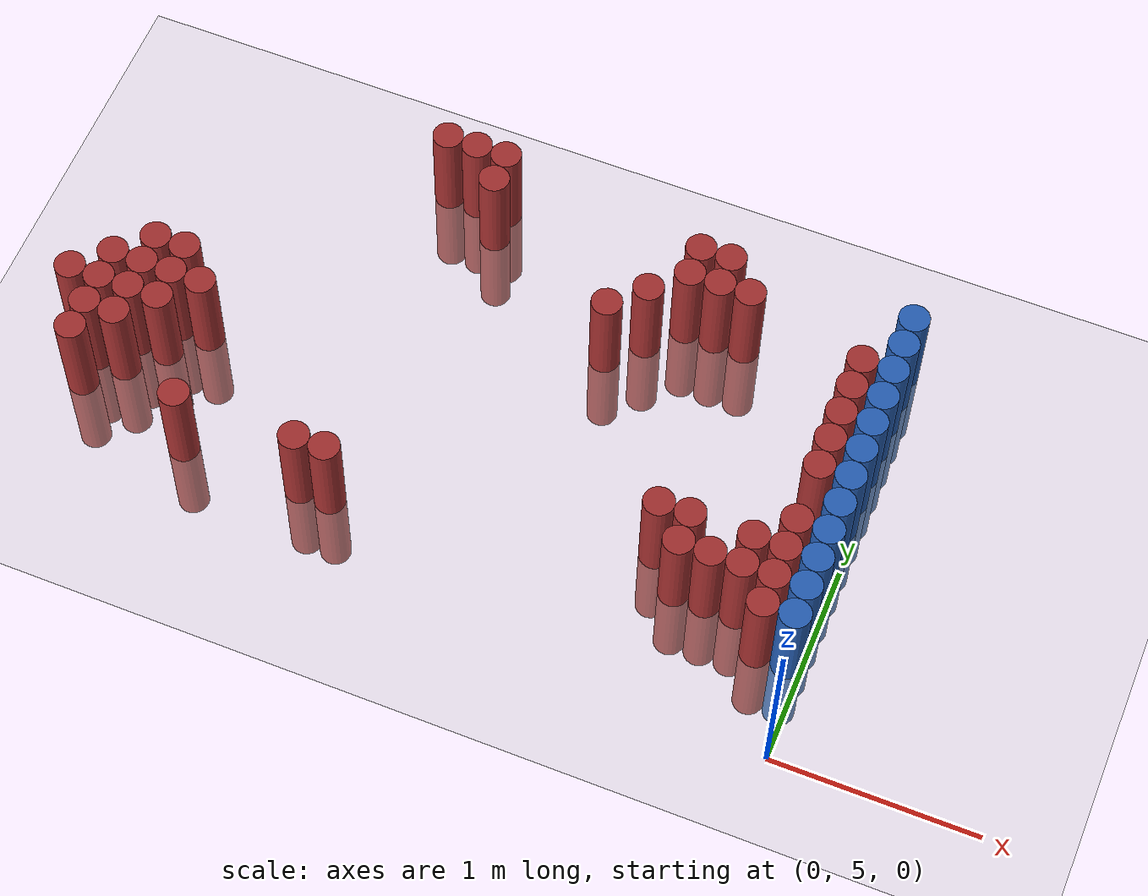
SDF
<sdf version="1.6">
 <world name="default">
  <model name="ground_plane">
   <static>1</static>
   <link name="link">
    <collision name="collision">
     <geometry><plane><normal>0 0 1</normal><size>100 100</size></plane></geometry>
     <surface><friction><ode><mu>100</mu><mu2>50</mu2></ode></friction></surface>
    </collision>
    <visual name="visual">
     <cast_shadows>0</cast_shadows>
     <geometry><plane><normal>0 0 1</normal><size>100 100</size></plane></geometry>
     <material>
      <script><uri>file://media/materials/scripts/gazebo.material</uri><name>Gazebo/Grey</name></script>
     </material>
    </visual>
   </link>
  </model>
  <model name="unit_cylinder_155">
   <static>1</static>
   <pose>-3.825000 5.925000 0.000000 0.000000 0.000000 0.000000</pose>
   <link name="link">
    <inertial>
     <mass>1</mass>
     <inertia><ixx>0.145833</ixx><ixy>0</ixy><ixz>0</ixz><iyy>0.145833</iyy><iyz>0</iyz><izz>0.125</izz></inertia>
    </inertial>
    <collision name="collision">
     <geometry><cylinder><radius>0.075000</radius><length>1</length></cylinder></geometry>
    </collision>
    <visual name="visual">
     <geometry><cylinder><radius>0.075000</radius><length>1</length></cylinder></geometry>
     <material>
      <ambient>0.648000 0.192000 0.192000 1</ambient>
      <diffuse>0.648000 0.192000 0.192000 1</diffuse>
     </material>
     <material>
      <script><name>Gazebo/Grey</name><uri>file://media/materials/scripts/gazebo.material</uri></script>
     </material>
    </visual>
   </link>
  </model>
  <model name="unit_cylinder_158">
   <static>1</static>
   <pose>-3.675000 5.625000 0.000000 0.000000 0.000000 0.000000</pose>
   <link name="link">
    <inertial>
     <mass>1</mass>
     <inertia><ixx>0.145833</ixx><ixy>0</ixy><ixz>0</ixz><iyy>0.145833</iyy><iyz>0</iyz><izz>0.125</izz></inertia>
    </inertial>
    <collision name="collision">
     <geometry><cylinder><radius>0.075000</radius><length>1</length></cylinder></geometry>
    </collision>
    <visual name="visual">
     <geometry><cylinder><radius>0.075000</radius><length>1</length></cylinder></geometry>
     <material>
      <ambient>0.648000 0.192000 0.192000 1</ambient>
      <diffuse>0.648000 0.192000 0.192000 1</diffuse>
     </material>
     <material>
      <script><name>Gazebo/Grey</name><uri>file://media/materials/scripts/gazebo.material</uri></script>
     </material>
    </visual>
   </link>
  </model>
  <model name="unit_cylinder_159">
   <static>1</static>
   <pose>-3.675000 5.775000 0.000000 0.000000 0.000000 0.000000</pose>
   <link name="link">
    <inertial>
     <mass>1</mass>
     <inertia><ixx>0.145833</ixx><ixy>0</ixy><ixz>0</ixz><iyy>0.145833</iyy><iyz>0</iyz><izz>0.125</izz></inertia>
    </inertial>
    <collision name="collision">
     <geometry><cylinder><radius>0.075000</radius><length>1</length></cylinder></geometry>
    </collision>
    <visual name="visual">
     <geometry><cylinder><radius>0.075000</radius><length>1</length></cylinder></geometry>
     <material>
      <ambient>0.648000 0.192000 0.192000 1</ambient>
      <diffuse>0.648000 0.192000 0.192000 1</diffuse>
     </material>
     <material>
      <script><name>Gazebo/Grey</name><uri>file://media/materials/scripts/gazebo.material</uri></script>
     </material>
    </visual>
   </link>
  </model>
  <model name="unit_cylinder_160">
   <static>1</static>
   <pose>-3.675000 5.925000 0.000000 0.000000 0.000000 0.000000</pose>
   <link name="link">
    <inertial>
     <mass>1</mass>
     <inertia><ixx>0.145833</ixx><ixy>0</ixy><ixz>0</ixz><iyy>0.145833</iyy><iyz>0</iyz><izz>0.125</izz></inertia>
    </inertial>
    <collision name="collision">
     <geometry><cylinder><radius>0.075000</radius><length>1</length></cylinder></geometry>
    </collision>
    <visual name="visual">
     <geometry><cylinder><radius>0.075000</radius><length>1</length></cylinder></geometry>
     <material>
      <ambient>0.648000 0.192000 0.192000 1</ambient>
      <diffuse>0.648000 0.192000 0.192000 1</diffuse>
     </material>
     <material>
      <script><name>Gazebo/Grey</name><uri>file://media/materials/scripts/gazebo.material</uri></script>
     </material>
    </visual>
   </link>
  </model>
  <model name="unit_cylinder_161">
   <static>1</static>
   <pose>-3.675000 6.075000 0.000000 0.000000 0.000000 0.000000</pose>
   <link name="link">
    <inertial>
     <mass>1</mass>
     <inertia><ixx>0.145833</ixx><ixy>0</ixy><ixz>0</ixz><iyy>0.145833</iyy><iyz>0</iyz><izz>0.125</izz></inertia>
    </inertial>
    <collision name="collision">
     <geometry><cylinder><radius>0.075000</radius><length>1</length></cylinder></geometry>
    </collision>
    <visual name="visual">
     <geometry><cylinder><radius>0.075000</radius><length>1</length></cylinder></geometry>
     <material>
      <ambient>0.648000 0.192000 0.192000 1</ambient>
      <diffuse>0.648000 0.192000 0.192000 1</diffuse>
     </material>
     <material>
      <script><name>Gazebo/Grey</name><uri>file://media/materials/scripts/gazebo.material</uri></script>
     </material>
    </visual>
   </link>
  </model>
  <model name="unit_cylinder_162">
   <static>1</static>
   <pose>-3.525000 5.775000 0.000000 0.000000 0.000000 0.000000</pose>
   <link name="link">
    <inertial>
     <mass>1</mass>
     <inertia><ixx>0.145833</ixx><ixy>0</ixy><ixz>0</ixz><iyy>0.145833</iyy><iyz>0</iyz><izz>0.125</izz></inertia>
    </inertial>
    <collision name="collision">
     <geometry><cylinder><radius>0.075000</radius><length>1</length></cylinder></geometry>
    </collision>
    <visual name="visual">
     <geometry><cylinder><radius>0.075000</radius><length>1</length></cylinder></geometry>
     <material>
      <ambient>0.648000 0.192000 0.192000 1</ambient>
      <diffuse>0.648000 0.192000 0.192000 1</diffuse>
     </material>
     <material>
      <script><name>Gazebo/Grey</name><uri>file://media/materials/scripts/gazebo.material</uri></script>
     </material>
    </visual>
   </link>
  </model>
  <model name="unit_cylinder_163">
   <static>1</static>
   <pose>-3.525000 5.925000 0.000000 0.000000 0.000000 0.000000</pose>
   <link name="link">
    <inertial>
     <mass>1</mass>
     <inertia><ixx>0.145833</ixx><ixy>0</ixy><ixz>0</ixz><iyy>0.145833</iyy><iyz>0</iyz><izz>0.125</izz></inertia>
    </inertial>
    <collision name="collision">
     <geometry><cylinder><radius>0.075000</radius><length>1</length></cylinder></geometry>
    </collision>
    <visual name="visual">
     <geometry><cylinder><radius>0.075000</radius><length>1</length></cylinder></geometry>
     <material>
      <ambient>0.648000 0.192000 0.192000 1</ambient>
      <diffuse>0.648000 0.192000 0.192000 1</diffuse>
     </material>
     <material>
      <script><name>Gazebo/Grey</name><uri>file://media/materials/scripts/gazebo.material</uri></script>
     </material>
    </visual>
   </link>
  </model>
  <model name="unit_cylinder_164">
   <static>1</static>
   <pose>-3.525000 6.075000 0.000000 0.000000 0.000000 0.000000</pose>
   <link name="link">
    <inertial>
     <mass>1</mass>
     <inertia><ixx>0.145833</ixx><ixy>0</ixy><ixz>0</ixz><iyy>0.145833</iyy><iyz>0</iyz><izz>0.125</izz></inertia>
    </inertial>
    <collision name="collision">
     <geometry><cylinder><radius>0.075000</radius><length>1</length></cylinder></geometry>
    </collision>
    <visual name="visual">
     <geometry><cylinder><radius>0.075000</radius><length>1</length></cylinder></geometry>
     <material>
      <ambient>0.648000 0.192000 0.192000 1</ambient>
      <diffuse>0.648000 0.192000 0.192000 1</diffuse>
     </material>
     <material>
      <script><name>Gazebo/Grey</name><uri>file://media/materials/scripts/gazebo.material</uri></script>
     </material>
    </visual>
   </link>
  </model>
  <model name="unit_cylinder_165">
   <static>1</static>
   <pose>-3.525000 6.225000 0.000000 0.000000 0.000000 0.000000</pose>
   <link name="link">
    <inertial>
     <mass>1</mass>
     <inertia><ixx>0.145833</ixx><ixy>0</ixy><ixz>0</ixz><iyy>0.145833</iyy><iyz>0</iyz><izz>0.125</izz></inertia>
    </inertial>
    <collision name="collision">
     <geometry><cylinder><radius>0.075000</radius><length>1</length></cylinder></geometry>
    </collision>
    <visual name="visual">
     <geometry><cylinder><radius>0.075000</radius><length>1</length></cylinder></geometry>
     <material>
      <ambient>0.648000 0.192000 0.192000 1</ambient>
      <diffuse>0.648000 0.192000 0.192000 1</diffuse>
     </material>
     <material>
      <script><name>Gazebo/Grey</name><uri>file://media/materials/scripts/gazebo.material</uri></script>
     </material>
    </visual>
   </link>
  </model>
  <model name="unit_cylinder_170">
   <static>1</static>
   <pose>-3.375000 5.925000 0.000000 0.000000 0.000000 0.000000</pose>
   <link name="link">
    <inertial>
     <mass>1</mass>
     <inertia><ixx>0.145833</ixx><ixy>0</ixy><ixz>0</ixz><iyy>0.145833</iyy><iyz>0</iyz><izz>0.125</izz></inertia>
    </inertial>
    <collision name="collision">
     <geometry><cylinder><radius>0.075000</radius><length>1</length></cylinder></geometry>
    </collision>
    <visual name="visual">
     <geometry><cylinder><radius>0.075000</radius><length>1</length></cylinder></geometry>
     <material>
      <ambient>0.648000 0.192000 0.192000 1</ambient>
      <diffuse>0.648000 0.192000 0.192000 1</diffuse>
     </material>
     <material>
      <script><name>Gazebo/Grey</name><uri>file://media/materials/scripts/gazebo.material</uri></script>
     </material>
    </visual>
   </link>
  </model>
  <model name="unit_cylinder_171">
   <static>1</static>
   <pose>-3.375000 6.075000 0.000000 0.000000 0.000000 0.000000</pose>
   <link name="link">
    <inertial>
     <mass>1</mass>
     <inertia><ixx>0.145833</ixx><ixy>0</ixy><ixz>0</ixz><iyy>0.145833</iyy><iyz>0</iyz><izz>0.125</izz></inertia>
    </inertial>
    <collision name="collision">
     <geometry><cylinder><radius>0.075000</radius><length>1</length></cylinder></geometry>
    </collision>
    <visual name="visual">
     <geometry><cylinder><radius>0.075000</radius><length>1</length></cylinder></geometry>
     <material>
      <ambient>0.648000 0.192000 0.192000 1</ambient>
      <diffuse>0.648000 0.192000 0.192000 1</diffuse>
     </material>
     <material>
      <script><name>Gazebo/Grey</name><uri>file://media/materials/scripts/gazebo.material</uri></script>
     </material>
    </visual>
   </link>
  </model>
  <model name="unit_cylinder_172">
   <static>1</static>
   <pose>-3.375000 6.225000 0.000000 0.000000 0.000000 0.000000</pose>
   <link name="link">
    <inertial>
     <mass>1</mass>
     <inertia><ixx>0.145833</ixx><ixy>0</ixy><ixz>0</ixz><iyy>0.145833</iyy><iyz>0</iyz><izz>0.125</izz></inertia>
    </inertial>
    <collision name="collision">
     <geometry><cylinder><radius>0.075000</radius><length>1</length></cylinder></geometry>
    </collision>
    <visual name="visual">
     <geometry><cylinder><radius>0.075000</radius><length>1</length></cylinder></geometry>
     <material>
      <ambient>0.648000 0.192000 0.192000 1</ambient>
      <diffuse>0.648000 0.192000 0.192000 1</diffuse>
     </material>
     <material>
      <script><name>Gazebo/Grey</name><uri>file://media/materials/scripts/gazebo.material</uri></script>
     </material>
    </visual>
   </link>
  </model>
  <model name="unit_cylinder_178">
   <static>1</static>
   <pose>-3.225000 6.075000 0.000000 0.000000 0.000000 0.000000</pose>
   <link name="link">
    <inertial>
     <mass>1</mass>
     <inertia><ixx>0.145833</ixx><ixy>0</ixy><ixz>0</ixz><iyy>0.145833</iyy><iyz>0</iyz><izz>0.125</izz></inertia>
    </inertial>
    <collision name="collision">
     <geometry><cylinder><radius>0.075000</radius><length>1</length></cylinder></geometry>
    </collision>
    <visual name="visual">
     <geometry><cylinder><radius>0.075000</radius><length>1</length></cylinder></geometry>
     <material>
      <ambient>0.648000 0.192000 0.192000 1</ambient>
      <diffuse>0.648000 0.192000 0.192000 1</diffuse>
     </material>
     <material>
      <script><name>Gazebo/Grey</name><uri>file://media/materials/scripts/gazebo.material</uri></script>
     </material>
    </visual>
   </link>
  </model>
  <model name="unit_cylinder_182">
   <static>1</static>
   <pose>-3.075000 5.475000 0.000000 0.000000 0.000000 0.000000</pose>
   <link name="link">
    <inertial>
     <mass>1</mass>
     <inertia><ixx>0.145833</ixx><ixy>0</ixy><ixz>0</ixz><iyy>0.145833</iyy><iyz>0</iyz><izz>0.125</izz></inertia>
    </inertial>
    <collision name="collision">
     <geometry><cylinder><radius>0.075000</radius><length>1</length></cylinder></geometry>
    </collision>
    <visual name="visual">
     <geometry><cylinder><radius>0.075000</radius><length>1</length></cylinder></geometry>
     <material>
      <ambient>0.648000 0.192000 0.192000 1</ambient>
      <diffuse>0.648000 0.192000 0.192000 1</diffuse>
     </material>
     <material>
      <script><name>Gazebo/Grey</name><uri>file://media/materials/scripts/gazebo.material</uri></script>
     </material>
    </visual>
   </link>
  </model>
  <model name="unit_cylinder_185">
   <static>1</static>
   <pose>-2.475000 5.475000 0.000000 0.000000 0.000000 0.000000</pose>
   <link name="link">
    <inertial>
     <mass>1</mass>
     <inertia><ixx>0.145833</ixx><ixy>0</ixy><ixz>0</ixz><iyy>0.145833</iyy><iyz>0</iyz><izz>0.125</izz></inertia>
    </inertial>
    <collision name="collision">
     <geometry><cylinder><radius>0.075000</radius><length>1</length></cylinder></geometry>
    </collision>
    <visual name="visual">
     <geometry><cylinder><radius>0.075000</radius><length>1</length></cylinder></geometry>
     <material>
      <ambient>0.648000 0.192000 0.192000 1</ambient>
      <diffuse>0.648000 0.192000 0.192000 1</diffuse>
     </material>
     <material>
      <script><name>Gazebo/Grey</name><uri>file://media/materials/scripts/gazebo.material</uri></script>
     </material>
    </visual>
   </link>
  </model>
  <model name="unit_cylinder_186">
   <static>1</static>
   <pose>-2.475000 7.275000 0.000000 0.000000 0.000000 0.000000</pose>
   <link name="link">
    <inertial>
     <mass>1</mass>
     <inertia><ixx>0.145833</ixx><ixy>0</ixy><ixz>0</ixz><iyy>0.145833</iyy><iyz>0</iyz><izz>0.125</izz></inertia>
    </inertial>
    <collision name="collision">
     <geometry><cylinder><radius>0.075000</radius><length>1</length></cylinder></geometry>
    </collision>
    <visual name="visual">
     <geometry><cylinder><radius>0.075000</radius><length>1</length></cylinder></geometry>
     <material>
      <ambient>0.648000 0.192000 0.192000 1</ambient>
      <diffuse>0.648000 0.192000 0.192000 1</diffuse>
     </material>
     <material>
      <script><name>Gazebo/Grey</name><uri>file://media/materials/scripts/gazebo.material</uri></script>
     </material>
    </visual>
   </link>
  </model>
  <model name="unit_cylinder_187">
   <static>1</static>
   <pose>-2.325000 5.475000 0.000000 0.000000 0.000000 0.000000</pose>
   <link name="link">
    <inertial>
     <mass>1</mass>
     <inertia><ixx>0.145833</ixx><ixy>0</ixy><ixz>0</ixz><iyy>0.145833</iyy><iyz>0</iyz><izz>0.125</izz></inertia>
    </inertial>
    <collision name="collision">
     <geometry><cylinder><radius>0.075000</radius><length>1</length></cylinder></geometry>
    </collision>
    <visual name="visual">
     <geometry><cylinder><radius>0.075000</radius><length>1</length></cylinder></geometry>
     <material>
      <ambient>0.648000 0.192000 0.192000 1</ambient>
      <diffuse>0.648000 0.192000 0.192000 1</diffuse>
     </material>
     <material>
      <script><name>Gazebo/Grey</name><uri>file://media/materials/scripts/gazebo.material</uri></script>
     </material>
    </visual>
   </link>
  </model>
  <model name="unit_cylinder_188">
   <static>1</static>
   <pose>-2.325000 7.275000 0.000000 0.000000 0.000000 0.000000</pose>
   <link name="link">
    <inertial>
     <mass>1</mass>
     <inertia><ixx>0.145833</ixx><ixy>0</ixy><ixz>0</ixz><iyy>0.145833</iyy><iyz>0</iyz><izz>0.125</izz></inertia>
    </inertial>
    <collision name="collision">
     <geometry><cylinder><radius>0.075000</radius><length>1</length></cylinder></geometry>
    </collision>
    <visual name="visual">
     <geometry><cylinder><radius>0.075000</radius><length>1</length></cylinder></geometry>
     <material>
      <ambient>0.648000 0.192000 0.192000 1</ambient>
      <diffuse>0.648000 0.192000 0.192000 1</diffuse>
     </material>
     <material>
      <script><name>Gazebo/Grey</name><uri>file://media/materials/scripts/gazebo.material</uri></script>
     </material>
    </visual>
   </link>
  </model>
  <model name="unit_cylinder_190">
   <static>1</static>
   <pose>-2.175000 7.125000 0.000000 0.000000 0.000000 0.000000</pose>
   <link name="link">
    <inertial>
     <mass>1</mass>
     <inertia><ixx>0.145833</ixx><ixy>0</ixy><ixz>0</ixz><iyy>0.145833</iyy><iyz>0</iyz><izz>0.125</izz></inertia>
    </inertial>
    <collision name="collision">
     <geometry><cylinder><radius>0.075000</radius><length>1</length></cylinder></geometry>
    </collision>
    <visual name="visual">
     <geometry><cylinder><radius>0.075000</radius><length>1</length></cylinder></geometry>
     <material>
      <ambient>0.648000 0.192000 0.192000 1</ambient>
      <diffuse>0.648000 0.192000 0.192000 1</diffuse>
     </material>
     <material>
      <script><name>Gazebo/Grey</name><uri>file://media/materials/scripts/gazebo.material</uri></script>
     </material>
    </visual>
   </link>
  </model>
  <model name="unit_cylinder_191">
   <static>1</static>
   <pose>-2.175000 7.275000 0.000000 0.000000 0.000000 0.000000</pose>
   <link name="link">
    <inertial>
     <mass>1</mass>
     <inertia><ixx>0.145833</ixx><ixy>0</ixy><ixz>0</ixz><iyy>0.145833</iyy><iyz>0</iyz><izz>0.125</izz></inertia>
    </inertial>
    <collision name="collision">
     <geometry><cylinder><radius>0.075000</radius><length>1</length></cylinder></geometry>
    </collision>
    <visual name="visual">
     <geometry><cylinder><radius>0.075000</radius><length>1</length></cylinder></geometry>
     <material>
      <ambient>0.648000 0.192000 0.192000 1</ambient>
      <diffuse>0.648000 0.192000 0.192000 1</diffuse>
     </material>
     <material>
      <script><name>Gazebo/Grey</name><uri>file://media/materials/scripts/gazebo.material</uri></script>
     </material>
    </visual>
   </link>
  </model>
  <model name="unit_cylinder_206">
   <static>1</static>
   <pose>-1.425000 6.675000 0.000000 0.000000 0.000000 0.000000</pose>
   <link name="link">
    <inertial>
     <mass>1</mass>
     <inertia><ixx>0.145833</ixx><ixy>0</ixy><ixz>0</ixz><iyy>0.145833</iyy><iyz>0</iyz><izz>0.125</izz></inertia>
    </inertial>
    <collision name="collision">
     <geometry><cylinder><radius>0.075000</radius><length>1</length></cylinder></geometry>
    </collision>
    <visual name="visual">
     <geometry><cylinder><radius>0.075000</radius><length>1</length></cylinder></geometry>
     <material>
      <ambient>0.648000 0.192000 0.192000 1</ambient>
      <diffuse>0.648000 0.192000 0.192000 1</diffuse>
     </material>
     <material>
      <script><name>Gazebo/Grey</name><uri>file://media/materials/scripts/gazebo.material</uri></script>
     </material>
    </visual>
   </link>
  </model>
  <model name="unit_cylinder_208">
   <static>1</static>
   <pose>-1.275000 6.825000 0.000000 0.000000 0.000000 0.000000</pose>
   <link name="link">
    <inertial>
     <mass>1</mass>
     <inertia><ixx>0.145833</ixx><ixy>0</ixy><ixz>0</ixz><iyy>0.145833</iyy><iyz>0</iyz><izz>0.125</izz></inertia>
    </inertial>
    <collision name="collision">
     <geometry><cylinder><radius>0.075000</radius><length>1</length></cylinder></geometry>
    </collision>
    <visual name="visual">
     <geometry><cylinder><radius>0.075000</radius><length>1</length></cylinder></geometry>
     <material>
      <ambient>0.648000 0.192000 0.192000 1</ambient>
      <diffuse>0.648000 0.192000 0.192000 1</diffuse>
     </material>
     <material>
      <script><name>Gazebo/Grey</name><uri>file://media/materials/scripts/gazebo.material</uri></script>
     </material>
    </visual>
   </link>
  </model>
  <model name="unit_cylinder_209">
   <static>1</static>
   <pose>-1.125000 6.975000 0.000000 0.000000 0.000000 0.000000</pose>
   <link name="link">
    <inertial>
     <mass>1</mass>
     <inertia><ixx>0.145833</ixx><ixy>0</ixy><ixz>0</ixz><iyy>0.145833</iyy><iyz>0</iyz><izz>0.125</izz></inertia>
    </inertial>
    <collision name="collision">
     <geometry><cylinder><radius>0.075000</radius><length>1</length></cylinder></geometry>
    </collision>
    <visual name="visual">
     <geometry><cylinder><radius>0.075000</radius><length>1</length></cylinder></geometry>
     <material>
      <ambient>0.648000 0.192000 0.192000 1</ambient>
      <diffuse>0.648000 0.192000 0.192000 1</diffuse>
     </material>
     <material>
      <script><name>Gazebo/Grey</name><uri>file://media/materials/scripts/gazebo.material</uri></script>
     </material>
    </visual>
   </link>
  </model>
  <model name="unit_cylinder_210">
   <static>1</static>
   <pose>-1.125000 7.125000 0.000000 0.000000 0.000000 0.000000</pose>
   <link name="link">
    <inertial>
     <mass>1</mass>
     <inertia><ixx>0.145833</ixx><ixy>0</ixy><ixz>0</ixz><iyy>0.145833</iyy><iyz>0</iyz><izz>0.125</izz></inertia>
    </inertial>
    <collision name="collision">
     <geometry><cylinder><radius>0.075000</radius><length>1</length></cylinder></geometry>
    </collision>
    <visual name="visual">
     <geometry><cylinder><radius>0.075000</radius><length>1</length></cylinder></geometry>
     <material>
      <ambient>0.648000 0.192000 0.192000 1</ambient>
      <diffuse>0.648000 0.192000 0.192000 1</diffuse>
     </material>
     <material>
      <script><name>Gazebo/Grey</name><uri>file://media/materials/scripts/gazebo.material</uri></script>
     </material>
    </visual>
   </link>
  </model>
  <model name="unit_cylinder_211">
   <static>1</static>
   <pose>-0.975000 6.975000 0.000000 0.000000 0.000000 0.000000</pose>
   <link name="link">
    <inertial>
     <mass>1</mass>
     <inertia><ixx>0.145833</ixx><ixy>0</ixy><ixz>0</ixz><iyy>0.145833</iyy><iyz>0</iyz><izz>0.125</izz></inertia>
    </inertial>
    <collision name="collision">
     <geometry><cylinder><radius>0.075000</radius><length>1</length></cylinder></geometry>
    </collision>
    <visual name="visual">
     <geometry><cylinder><radius>0.075000</radius><length>1</length></cylinder></geometry>
     <material>
      <ambient>0.648000 0.192000 0.192000 1</ambient>
      <diffuse>0.648000 0.192000 0.192000 1</diffuse>
     </material>
     <material>
      <script><name>Gazebo/Grey</name><uri>file://media/materials/scripts/gazebo.material</uri></script>
     </material>
    </visual>
   </link>
  </model>
  <model name="unit_cylinder_212">
   <static>1</static>
   <pose>-0.975000 7.125000 0.000000 0.000000 0.000000 0.000000</pose>
   <link name="link">
    <inertial>
     <mass>1</mass>
     <inertia><ixx>0.145833</ixx><ixy>0</ixy><ixz>0</ixz><iyy>0.145833</iyy><iyz>0</iyz><izz>0.125</izz></inertia>
    </inertial>
    <collision name="collision">
     <geometry><cylinder><radius>0.075000</radius><length>1</length></cylinder></geometry>
    </collision>
    <visual name="visual">
     <geometry><cylinder><radius>0.075000</radius><length>1</length></cylinder></geometry>
     <material>
      <ambient>0.648000 0.192000 0.192000 1</ambient>
      <diffuse>0.648000 0.192000 0.192000 1</diffuse>
     </material>
     <material>
      <script><name>Gazebo/Grey</name><uri>file://media/materials/scripts/gazebo.material</uri></script>
     </material>
    </visual>
   </link>
  </model>
  <model name="unit_cylinder_214">
   <static>1</static>
   <pose>-0.825000 5.775000 0.000000 0.000000 0.000000 0.000000</pose>
   <link name="link">
    <inertial>
     <mass>1</mass>
     <inertia><ixx>0.145833</ixx><ixy>0</ixy><ixz>0</ixz><iyy>0.145833</iyy><iyz>0</iyz><izz>0.125</izz></inertia>
    </inertial>
    <collision name="collision">
     <geometry><cylinder><radius>0.075000</radius><length>1</length></cylinder></geometry>
    </collision>
    <visual name="visual">
     <geometry><cylinder><radius>0.075000</radius><length>1</length></cylinder></geometry>
     <material>
      <ambient>0.648000 0.192000 0.192000 1</ambient>
      <diffuse>0.648000 0.192000 0.192000 1</diffuse>
     </material>
     <material>
      <script><name>Gazebo/Grey</name><uri>file://media/materials/scripts/gazebo.material</uri></script>
     </material>
    </visual>
   </link>
  </model>
  <model name="unit_cylinder_215">
   <static>1</static>
   <pose>-0.825000 6.975000 0.000000 0.000000 0.000000 0.000000</pose>
   <link name="link">
    <inertial>
     <mass>1</mass>
     <inertia><ixx>0.145833</ixx><ixy>0</ixy><ixz>0</ixz><iyy>0.145833</iyy><iyz>0</iyz><izz>0.125</izz></inertia>
    </inertial>
    <collision name="collision">
     <geometry><cylinder><radius>0.075000</radius><length>1</length></cylinder></geometry>
    </collision>
    <visual name="visual">
     <geometry><cylinder><radius>0.075000</radius><length>1</length></cylinder></geometry>
     <material>
      <ambient>0.648000 0.192000 0.192000 1</ambient>
      <diffuse>0.648000 0.192000 0.192000 1</diffuse>
     </material>
     <material>
      <script><name>Gazebo/Grey</name><uri>file://media/materials/scripts/gazebo.material</uri></script>
     </material>
    </visual>
   </link>
  </model>
  <model name="unit_cylinder_219">
   <static>1</static>
   <pose>-0.675000 5.625000 0.000000 0.000000 0.000000 0.000000</pose>
   <link name="link">
    <inertial>
     <mass>1</mass>
     <inertia><ixx>0.145833</ixx><ixy>0</ixy><ixz>0</ixz><iyy>0.145833</iyy><iyz>0</iyz><izz>0.125</izz></inertia>
    </inertial>
    <collision name="collision">
     <geometry><cylinder><radius>0.075000</radius><length>1</length></cylinder></geometry>
    </collision>
    <visual name="visual">
     <geometry><cylinder><radius>0.075000</radius><length>1</length></cylinder></geometry>
     <material>
      <ambient>0.648000 0.192000 0.192000 1</ambient>
      <diffuse>0.648000 0.192000 0.192000 1</diffuse>
     </material>
     <material>
      <script><name>Gazebo/Grey</name><uri>file://media/materials/scripts/gazebo.material</uri></script>
     </material>
    </visual>
   </link>
  </model>
  <model name="unit_cylinder_220">
   <static>1</static>
   <pose>-0.675000 5.775000 0.000000 0.000000 0.000000 0.000000</pose>
   <link name="link">
    <inertial>
     <mass>1</mass>
     <inertia><ixx>0.145833</ixx><ixy>0</ixy><ixz>0</ixz><iyy>0.145833</iyy><iyz>0</iyz><izz>0.125</izz></inertia>
    </inertial>
    <collision name="collision">
     <geometry><cylinder><radius>0.075000</radius><length>1</length></cylinder></geometry>
    </collision>
    <visual name="visual">
     <geometry><cylinder><radius>0.075000</radius><length>1</length></cylinder></geometry>
     <material>
      <ambient>0.648000 0.192000 0.192000 1</ambient>
      <diffuse>0.648000 0.192000 0.192000 1</diffuse>
     </material>
     <material>
      <script><name>Gazebo/Grey</name><uri>file://media/materials/scripts/gazebo.material</uri></script>
     </material>
    </visual>
   </link>
  </model>
  <model name="unit_cylinder_223">
   <static>1</static>
   <pose>-0.525000 5.625000 0.000000 0.000000 0.000000 0.000000</pose>
   <link name="link">
    <inertial>
     <mass>1</mass>
     <inertia><ixx>0.145833</ixx><ixy>0</ixy><ixz>0</ixz><iyy>0.145833</iyy><iyz>0</iyz><izz>0.125</izz></inertia>
    </inertial>
    <collision name="collision">
     <geometry><cylinder><radius>0.075000</radius><length>1</length></cylinder></geometry>
    </collision>
    <visual name="visual">
     <geometry><cylinder><radius>0.075000</radius><length>1</length></cylinder></geometry>
     <material>
      <ambient>0.648000 0.192000 0.192000 1</ambient>
      <diffuse>0.648000 0.192000 0.192000 1</diffuse>
     </material>
     <material>
      <script><name>Gazebo/Grey</name><uri>file://media/materials/scripts/gazebo.material</uri></script>
     </material>
    </visual>
   </link>
  </model>
  <model name="unit_cylinder_225">
   <static>1</static>
   <pose>-0.375000 5.625000 0.000000 0.000000 0.000000 0.000000</pose>
   <link name="link">
    <inertial>
     <mass>1</mass>
     <inertia><ixx>0.145833</ixx><ixy>0</ixy><ixz>0</ixz><iyy>0.145833</iyy><iyz>0</iyz><izz>0.125</izz></inertia>
    </inertial>
    <collision name="collision">
     <geometry><cylinder><radius>0.075000</radius><length>1</length></cylinder></geometry>
    </collision>
    <visual name="visual">
     <geometry><cylinder><radius>0.075000</radius><length>1</length></cylinder></geometry>
     <material>
      <ambient>0.648000 0.192000 0.192000 1</ambient>
      <diffuse>0.648000 0.192000 0.192000 1</diffuse>
     </material>
     <material>
      <script><name>Gazebo/Grey</name><uri>file://media/materials/scripts/gazebo.material</uri></script>
     </material>
    </visual>
   </link>
  </model>
  <model name="unit_cylinder_226">
   <static>1</static>
   <pose>-0.375000 5.775000 0.000000 0.000000 0.000000 0.000000</pose>
   <link name="link">
    <inertial>
     <mass>1</mass>
     <inertia><ixx>0.145833</ixx><ixy>0</ixy><ixz>0</ixz><iyy>0.145833</iyy><iyz>0</iyz><izz>0.125</izz></inertia>
    </inertial>
    <collision name="collision">
     <geometry><cylinder><radius>0.075000</radius><length>1</length></cylinder></geometry>
    </collision>
    <visual name="visual">
     <geometry><cylinder><radius>0.075000</radius><length>1</length></cylinder></geometry>
     <material>
      <ambient>0.648000 0.192000 0.192000 1</ambient>
      <diffuse>0.648000 0.192000 0.192000 1</diffuse>
     </material>
     <material>
      <script><name>Gazebo/Grey</name><uri>file://media/materials/scripts/gazebo.material</uri></script>
     </material>
    </visual>
   </link>
  </model>
  <model name="unit_cylinder_229">
   <static>1</static>
   <pose>-0.225000 5.475000 0.000000 0.000000 0.000000 0.000000</pose>
   <link name="link">
    <inertial>
     <mass>1</mass>
     <inertia><ixx>0.145833</ixx><ixy>0</ixy><ixz>0</ixz><iyy>0.145833</iyy><iyz>0</iyz><izz>0.125</izz></inertia>
    </inertial>
    <collision name="collision">
     <geometry><cylinder><radius>0.075000</radius><length>1</length></cylinder></geometry>
    </collision>
    <visual name="visual">
     <geometry><cylinder><radius>0.075000</radius><length>1</length></cylinder></geometry>
     <material>
      <ambient>0.648000 0.192000 0.192000 1</ambient>
      <diffuse>0.648000 0.192000 0.192000 1</diffuse>
     </material>
     <material>
      <script><name>Gazebo/Grey</name><uri>file://media/materials/scripts/gazebo.material</uri></script>
     </material>
    </visual>
   </link>
  </model>
  <model name="unit_cylinder_230">
   <static>1</static>
   <pose>-0.225000 5.625000 0.000000 0.000000 0.000000 0.000000</pose>
   <link name="link">
    <inertial>
     <mass>1</mass>
     <inertia><ixx>0.145833</ixx><ixy>0</ixy><ixz>0</ixz><iyy>0.145833</iyy><iyz>0</iyz><izz>0.125</izz></inertia>
    </inertial>
    <collision name="collision">
     <geometry><cylinder><radius>0.075000</radius><length>1</length></cylinder></geometry>
    </collision>
    <visual name="visual">
     <geometry><cylinder><radius>0.075000</radius><length>1</length></cylinder></geometry>
     <material>
      <ambient>0.648000 0.192000 0.192000 1</ambient>
      <diffuse>0.648000 0.192000 0.192000 1</diffuse>
     </material>
     <material>
      <script><name>Gazebo/Grey</name><uri>file://media/materials/scripts/gazebo.material</uri></script>
     </material>
    </visual>
   </link>
  </model>
  <model name="unit_cylinder_231">
   <static>1</static>
   <pose>-0.225000 5.775000 0.000000 0.000000 0.000000 0.000000</pose>
   <link name="link">
    <inertial>
     <mass>1</mass>
     <inertia><ixx>0.145833</ixx><ixy>0</ixy><ixz>0</ixz><iyy>0.145833</iyy><iyz>0</iyz><izz>0.125</izz></inertia>
    </inertial>
    <collision name="collision">
     <geometry><cylinder><radius>0.075000</radius><length>1</length></cylinder></geometry>
    </collision>
    <visual name="visual">
     <geometry><cylinder><radius>0.075000</radius><length>1</length></cylinder></geometry>
     <material>
      <ambient>0.648000 0.192000 0.192000 1</ambient>
      <diffuse>0.648000 0.192000 0.192000 1</diffuse>
     </material>
     <material>
      <script><name>Gazebo/Grey</name><uri>file://media/materials/scripts/gazebo.material</uri></script>
     </material>
    </visual>
   </link>
  </model>
  <model name="unit_cylinder_232">
   <static>1</static>
   <pose>-0.225000 5.925000 0.000000 0.000000 0.000000 0.000000</pose>
   <link name="link">
    <inertial>
     <mass>1</mass>
     <inertia><ixx>0.145833</ixx><ixy>0</ixy><ixz>0</ixz><iyy>0.145833</iyy><iyz>0</iyz><izz>0.125</izz></inertia>
    </inertial>
    <collision name="collision">
     <geometry><cylinder><radius>0.075000</radius><length>1</length></cylinder></geometry>
    </collision>
    <visual name="visual">
     <geometry><cylinder><radius>0.075000</radius><length>1</length></cylinder></geometry>
     <material>
      <ambient>0.648000 0.192000 0.192000 1</ambient>
      <diffuse>0.648000 0.192000 0.192000 1</diffuse>
     </material>
     <material>
      <script><name>Gazebo/Grey</name><uri>file://media/materials/scripts/gazebo.material</uri></script>
     </material>
    </visual>
   </link>
  </model>
  <model name="unit_cylinder_233">
   <static>1</static>
   <pose>-0.225000 6.225000 0.000000 0.000000 0.000000 0.000000</pose>
   <link name="link">
    <inertial>
     <mass>1</mass>
     <inertia><ixx>0.145833</ixx><ixy>0</ixy><ixz>0</ixz><iyy>0.145833</iyy><iyz>0</iyz><izz>0.125</izz></inertia>
    </inertial>
    <collision name="collision">
     <geometry><cylinder><radius>0.075000</radius><length>1</length></cylinder></geometry>
    </collision>
    <visual name="visual">
     <geometry><cylinder><radius>0.075000</radius><length>1</length></cylinder></geometry>
     <material>
      <ambient>0.648000 0.192000 0.192000 1</ambient>
      <diffuse>0.648000 0.192000 0.192000 1</diffuse>
     </material>
     <material>
      <script><name>Gazebo/Grey</name><uri>file://media/materials/scripts/gazebo.material</uri></script>
     </material>
    </visual>
   </link>
  </model>
  <model name="unit_cylinder_234">
   <static>1</static>
   <pose>-0.225000 6.375000 0.000000 0.000000 0.000000 0.000000</pose>
   <link name="link">
    <inertial>
     <mass>1</mass>
     <inertia><ixx>0.145833</ixx><ixy>0</ixy><ixz>0</ixz><iyy>0.145833</iyy><iyz>0</iyz><izz>0.125</izz></inertia>
    </inertial>
    <collision name="collision">
     <geometry><cylinder><radius>0.075000</radius><length>1</length></cylinder></geometry>
    </collision>
    <visual name="visual">
     <geometry><cylinder><radius>0.075000</radius><length>1</length></cylinder></geometry>
     <material>
      <ambient>0.648000 0.192000 0.192000 1</ambient>
      <diffuse>0.648000 0.192000 0.192000 1</diffuse>
     </material>
     <material>
      <script><name>Gazebo/Grey</name><uri>file://media/materials/scripts/gazebo.material</uri></script>
     </material>
    </visual>
   </link>
  </model>
  <model name="unit_cylinder_235">
   <static>1</static>
   <pose>-0.225000 6.525000 0.000000 0.000000 0.000000 0.000000</pose>
   <link name="link">
    <inertial>
     <mass>1</mass>
     <inertia><ixx>0.145833</ixx><ixy>0</ixy><ixz>0</ixz><iyy>0.145833</iyy><iyz>0</iyz><izz>0.125</izz></inertia>
    </inertial>
    <collision name="collision">
     <geometry><cylinder><radius>0.075000</radius><length>1</length></cylinder></geometry>
    </collision>
    <visual name="visual">
     <geometry><cylinder><radius>0.075000</radius><length>1</length></cylinder></geometry>
     <material>
      <ambient>0.648000 0.192000 0.192000 1</ambient>
      <diffuse>0.648000 0.192000 0.192000 1</diffuse>
     </material>
     <material>
      <script><name>Gazebo/Grey</name><uri>file://media/materials/scripts/gazebo.material</uri></script>
     </material>
    </visual>
   </link>
  </model>
  <model name="unit_cylinder_236">
   <static>1</static>
   <pose>-0.225000 6.675000 0.000000 0.000000 0.000000 0.000000</pose>
   <link name="link">
    <inertial>
     <mass>1</mass>
     <inertia><ixx>0.145833</ixx><ixy>0</ixy><ixz>0</ixz><iyy>0.145833</iyy><iyz>0</iyz><izz>0.125</izz></inertia>
    </inertial>
    <collision name="collision">
     <geometry><cylinder><radius>0.075000</radius><length>1</length></cylinder></geometry>
    </collision>
    <visual name="visual">
     <geometry><cylinder><radius>0.075000</radius><length>1</length></cylinder></geometry>
     <material>
      <ambient>0.648000 0.192000 0.192000 1</ambient>
      <diffuse>0.648000 0.192000 0.192000 1</diffuse>
     </material>
     <material>
      <script><name>Gazebo/Grey</name><uri>file://media/materials/scripts/gazebo.material</uri></script>
     </material>
    </visual>
   </link>
  </model>
  <model name="unit_cylinder_237">
   <static>1</static>
   <pose>-0.225000 6.825000 0.000000 0.000000 0.000000 0.000000</pose>
   <link name="link">
    <inertial>
     <mass>1</mass>
     <inertia><ixx>0.145833</ixx><ixy>0</ixy><ixz>0</ixz><iyy>0.145833</iyy><iyz>0</iyz><izz>0.125</izz></inertia>
    </inertial>
    <collision name="collision">
     <geometry><cylinder><radius>0.075000</radius><length>1</length></cylinder></geometry>
    </collision>
    <visual name="visual">
     <geometry><cylinder><radius>0.075000</radius><length>1</length></cylinder></geometry>
     <material>
      <ambient>0.648000 0.192000 0.192000 1</ambient>
      <diffuse>0.648000 0.192000 0.192000 1</diffuse>
     </material>
     <material>
      <script><name>Gazebo/Grey</name><uri>file://media/materials/scripts/gazebo.material</uri></script>
     </material>
    </visual>
   </link>
  </model>
  <model name="unit_cylinder_243">
   <static>1</static>
   <pose>-0.075000 5.475000 0.000000 0.000000 0.000000 0.000000</pose>
   <link name="link">
    <inertial>
     <mass>1</mass>
     <inertia><ixx>0.145833</ixx><ixy>0</ixy><ixz>0</ixz><iyy>0.145833</iyy><iyz>0</iyz><izz>0.125</izz></inertia>
    </inertial>
    <collision name="collision">
     <geometry><cylinder><radius>0.075000</radius><length>1</length></cylinder></geometry>
    </collision>
    <visual name="visual">
     <geometry><cylinder><radius>0.075000</radius><length>1</length></cylinder></geometry>
     <material>
      <ambient>0.152000 0.379000 0.720000 1</ambient>
      <diffuse>0.152000 0.379000 0.720000 1</diffuse>
     </material>
     <material>
      <script><name>Gazebo/Grey</name><uri>file://media/materials/scripts/gazebo.material</uri></script>
     </material>
    </visual>
   </link>
  </model>
  <model name="unit_cylinder_244">
   <static>1</static>
   <pose>-0.075000 5.625000 0.000000 0.000000 0.000000 0.000000</pose>
   <link name="link">
    <inertial>
     <mass>1</mass>
     <inertia><ixx>0.145833</ixx><ixy>0</ixy><ixz>0</ixz><iyy>0.145833</iyy><iyz>0</iyz><izz>0.125</izz></inertia>
    </inertial>
    <collision name="collision">
     <geometry><cylinder><radius>0.075000</radius><length>1</length></cylinder></geometry>
    </collision>
    <visual name="visual">
     <geometry><cylinder><radius>0.075000</radius><length>1</length></cylinder></geometry>
     <material>
      <ambient>0.152000 0.379000 0.720000 1</ambient>
      <diffuse>0.152000 0.379000 0.720000 1</diffuse>
     </material>
     <material>
      <script><name>Gazebo/Grey</name><uri>file://media/materials/scripts/gazebo.material</uri></script>
     </material>
    </visual>
   </link>
  </model>
  <model name="unit_cylinder_245">
   <static>1</static>
   <pose>-0.075000 5.775000 0.000000 0.000000 0.000000 0.000000</pose>
   <link name="link">
    <inertial>
     <mass>1</mass>
     <inertia><ixx>0.145833</ixx><ixy>0</ixy><ixz>0</ixz><iyy>0.145833</iyy><iyz>0</iyz><izz>0.125</izz></inertia>
    </inertial>
    <collision name="collision">
     <geometry><cylinder><radius>0.075000</radius><length>1</length></cylinder></geometry>
    </collision>
    <visual name="visual">
     <geometry><cylinder><radius>0.075000</radius><length>1</length></cylinder></geometry>
     <material>
      <ambient>0.152000 0.379000 0.720000 1</ambient>
      <diffuse>0.152000 0.379000 0.720000 1</diffuse>
     </material>
     <material>
      <script><name>Gazebo/Grey</name><uri>file://media/materials/scripts/gazebo.material</uri></script>
     </material>
    </visual>
   </link>
  </model>
  <model name="unit_cylinder_246">
   <static>1</static>
   <pose>-0.075000 5.925000 0.000000 0.000000 0.000000 0.000000</pose>
   <link name="link">
    <inertial>
     <mass>1</mass>
     <inertia><ixx>0.145833</ixx><ixy>0</ixy><ixz>0</ixz><iyy>0.145833</iyy><iyz>0</iyz><izz>0.125</izz></inertia>
    </inertial>
    <collision name="collision">
     <geometry><cylinder><radius>0.075000</radius><length>1</length></cylinder></geometry>
    </collision>
    <visual name="visual">
     <geometry><cylinder><radius>0.075000</radius><length>1</length></cylinder></geometry>
     <material>
      <ambient>0.152000 0.379000 0.720000 1</ambient>
      <diffuse>0.152000 0.379000 0.720000 1</diffuse>
     </material>
     <material>
      <script><name>Gazebo/Grey</name><uri>file://media/materials/scripts/gazebo.material</uri></script>
     </material>
    </visual>
   </link>
  </model>
  <model name="unit_cylinder_247">
   <static>1</static>
   <pose>-0.075000 6.075000 0.000000 0.000000 0.000000 0.000000</pose>
   <link name="link">
    <inertial>
     <mass>1</mass>
     <inertia><ixx>0.145833</ixx><ixy>0</ixy><ixz>0</ixz><iyy>0.145833</iyy><iyz>0</iyz><izz>0.125</izz></inertia>
    </inertial>
    <collision name="collision">
     <geometry><cylinder><radius>0.075000</radius><length>1</length></cylinder></geometry>
    </collision>
    <visual name="visual">
     <geometry><cylinder><radius>0.075000</radius><length>1</length></cylinder></geometry>
     <material>
      <ambient>0.152000 0.379000 0.720000 1</ambient>
      <diffuse>0.152000 0.379000 0.720000 1</diffuse>
     </material>
     <material>
      <script><name>Gazebo/Grey</name><uri>file://media/materials/scripts/gazebo.material</uri></script>
     </material>
    </visual>
   </link>
  </model>
  <model name="unit_cylinder_248">
   <static>1</static>
   <pose>-0.075000 6.225000 0.000000 0.000000 0.000000 0.000000</pose>
   <link name="link">
    <inertial>
     <mass>1</mass>
     <inertia><ixx>0.145833</ixx><ixy>0</ixy><ixz>0</ixz><iyy>0.145833</iyy><iyz>0</iyz><izz>0.125</izz></inertia>
    </inertial>
    <collision name="collision">
     <geometry><cylinder><radius>0.075000</radius><length>1</length></cylinder></geometry>
    </collision>
    <visual name="visual">
     <geometry><cylinder><radius>0.075000</radius><length>1</length></cylinder></geometry>
     <material>
      <ambient>0.152000 0.379000 0.720000 1</ambient>
      <diffuse>0.152000 0.379000 0.720000 1</diffuse>
     </material>
     <material>
      <script><name>Gazebo/Grey</name><uri>file://media/materials/scripts/gazebo.material</uri></script>
     </material>
    </visual>
   </link>
  </model>
  <model name="unit_cylinder_249">
   <static>1</static>
   <pose>-0.075000 6.375000 0.000000 0.000000 0.000000 0.000000</pose>
   <link name="link">
    <inertial>
     <mass>1</mass>
     <inertia><ixx>0.145833</ixx><ixy>0</ixy><ixz>0</ixz><iyy>0.145833</iyy><iyz>0</iyz><izz>0.125</izz></inertia>
    </inertial>
    <collision name="collision">
     <geometry><cylinder><radius>0.075000</radius><length>1</length></cylinder></geometry>
    </collision>
    <visual name="visual">
     <geometry><cylinder><radius>0.075000</radius><length>1</length></cylinder></geometry>
     <material>
      <ambient>0.152000 0.379000 0.720000 1</ambient>
      <diffuse>0.152000 0.379000 0.720000 1</diffuse>
     </material>
     <material>
      <script><name>Gazebo/Grey</name><uri>file://media/materials/scripts/gazebo.material</uri></script>
     </material>
    </visual>
   </link>
  </model>
  <model name="unit_cylinder_250">
   <static>1</static>
   <pose>-0.075000 6.525000 0.000000 0.000000 0.000000 0.000000</pose>
   <link name="link">
    <inertial>
     <mass>1</mass>
     <inertia><ixx>0.145833</ixx><ixy>0</ixy><ixz>0</ixz><iyy>0.145833</iyy><iyz>0</iyz><izz>0.125</izz></inertia>
    </inertial>
    <collision name="collision">
     <geometry><cylinder><radius>0.075000</radius><length>1</length></cylinder></geometry>
    </collision>
    <visual name="visual">
     <geometry><cylinder><radius>0.075000</radius><length>1</length></cylinder></geometry>
     <material>
      <ambient>0.152000 0.379000 0.720000 1</ambient>
      <diffuse>0.152000 0.379000 0.720000 1</diffuse>
     </material>
     <material>
      <script><name>Gazebo/Grey</name><uri>file://media/materials/scripts/gazebo.material</uri></script>
     </material>
    </visual>
   </link>
  </model>
  <model name="unit_cylinder_251">
   <static>1</static>
   <pose>-0.075000 6.675000 0.000000 0.000000 0.000000 0.000000</pose>
   <link name="link">
    <inertial>
     <mass>1</mass>
     <inertia><ixx>0.145833</ixx><ixy>0</ixy><ixz>0</ixz><iyy>0.145833</iyy><iyz>0</iyz><izz>0.125</izz></inertia>
    </inertial>
    <collision name="collision">
     <geometry><cylinder><radius>0.075000</radius><length>1</length></cylinder></geometry>
    </collision>
    <visual name="visual">
     <geometry><cylinder><radius>0.075000</radius><length>1</length></cylinder></geometry>
     <material>
      <ambient>0.152000 0.379000 0.720000 1</ambient>
      <diffuse>0.152000 0.379000 0.720000 1</diffuse>
     </material>
     <material>
      <script><name>Gazebo/Grey</name><uri>file://media/materials/scripts/gazebo.material</uri></script>
     </material>
    </visual>
   </link>
  </model>
  <model name="unit_cylinder_252">
   <static>1</static>
   <pose>-0.075000 6.825000 0.000000 0.000000 0.000000 0.000000</pose>
   <link name="link">
    <inertial>
     <mass>1</mass>
     <inertia><ixx>0.145833</ixx><ixy>0</ixy><ixz>0</ixz><iyy>0.145833</iyy><iyz>0</iyz><izz>0.125</izz></inertia>
    </inertial>
    <collision name="collision">
     <geometry><cylinder><radius>0.075000</radius><length>1</length></cylinder></geometry>
    </collision>
    <visual name="visual">
     <geometry><cylinder><radius>0.075000</radius><length>1</length></cylinder></geometry>
     <material>
      <ambient>0.152000 0.379000 0.720000 1</ambient>
      <diffuse>0.152000 0.379000 0.720000 1</diffuse>
     </material>
     <material>
      <script><name>Gazebo/Grey</name><uri>file://media/materials/scripts/gazebo.material</uri></script>
     </material>
    </visual>
   </link>
  </model>
  <model name="unit_cylinder_253">
   <static>1</static>
   <pose>-0.075000 6.975000 0.000000 0.000000 0.000000 0.000000</pose>
   <link name="link">
    <inertial>
     <mass>1</mass>
     <inertia><ixx>0.145833</ixx><ixy>0</ixy><ixz>0</ixz><iyy>0.145833</iyy><iyz>0</iyz><izz>0.125</izz></inertia>
    </inertial>
    <collision name="collision">
     <geometry><cylinder><radius>0.075000</radius><length>1</length></cylinder></geometry>
    </collision>
    <visual name="visual">
     <geometry><cylinder><radius>0.075000</radius><length>1</length></cylinder></geometry>
     <material>
      <ambient>0.152000 0.379000 0.720000 1</ambient>
      <diffuse>0.152000 0.379000 0.720000 1</diffuse>
     </material>
     <material>
      <script><name>Gazebo/Grey</name><uri>file://media/materials/scripts/gazebo.material</uri></script>
     </material>
    </visual>
   </link>
  </model>
  <model name="unit_cylinder_254">
   <static>1</static>
   <pose>-0.075000 7.125000 0.000000 0.000000 0.000000 0.000000</pose>
   <link name="link">
    <inertial>
     <mass>1</mass>
     <inertia><ixx>0.145833</ixx><ixy>0</ixy><ixz>0</ixz><iyy>0.145833</iyy><iyz>0</iyz><izz>0.125</izz></inertia>
    </inertial>
    <collision name="collision">
     <geometry><cylinder><radius>0.075000</radius><length>1</length></cylinder></geometry>
    </collision>
    <visual name="visual">
     <geometry><cylinder><radius>0.075000</radius><length>1</length></cylinder></geometry>
     <material>
      <ambient>0.152000 0.379000 0.720000 1</ambient>
      <diffuse>0.152000 0.379000 0.720000 1</diffuse>
     </material>
     <material>
      <script><name>Gazebo/Grey</name><uri>file://media/materials/scripts/gazebo.material</uri></script>
     </material>
    </visual>
   </link>
  </model>
 </world>
</sdf>
